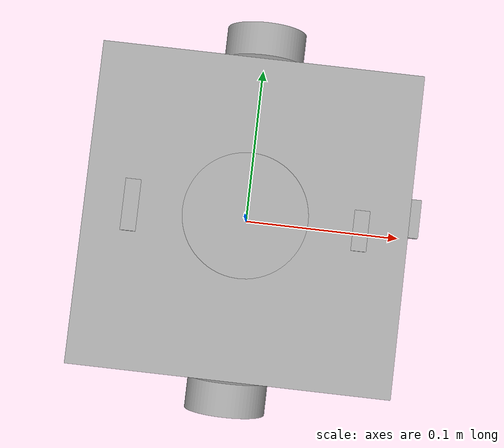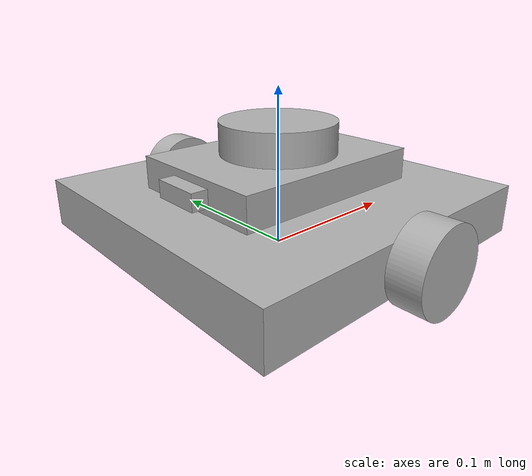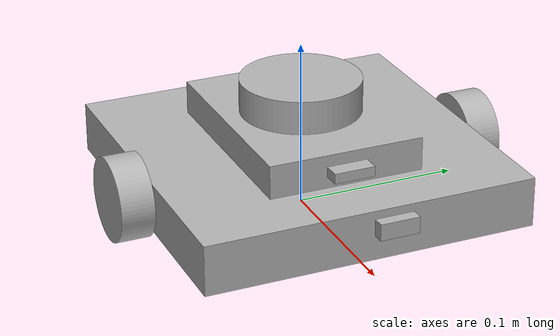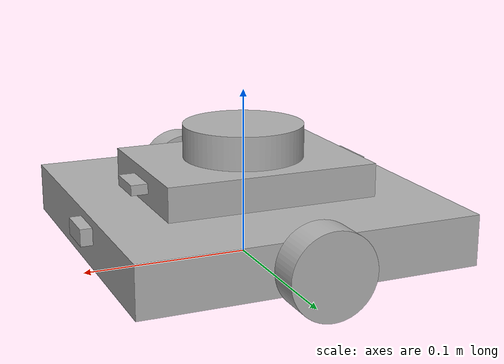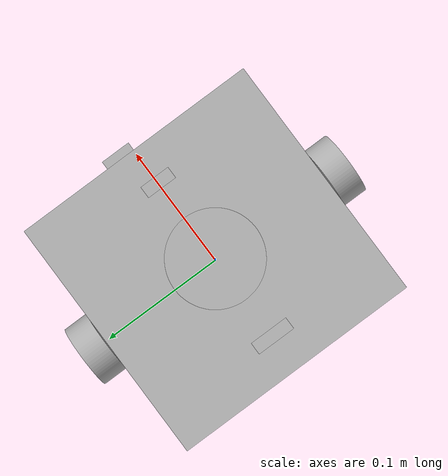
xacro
<?xml version="1.0" ?>
<robot name="bannu" xmlns:xacro="http://www.ros.org/wiki/xacro">

<xacro:include filename="$(find bannu_description)/urdf/materials.xacro" />
<xacro:include filename="$(find bannu_description)/urdf/bannu.trans" />
<xacro:include filename="$(find bannu_description)/urdf/bannu.gazebo" />
<link name="base_link">
  <inertial>
    <origin xyz="-1.4326115948005535e-05 -1.2600134811548118e-17 0.029087654253321497" rpy="0 0 0"/>
    <mass value="1.53024455420228"/>
    <inertia ixx="0.004664" iyy="0.004851" izz="0.009038" ixy="0.0" iyz="-0.0" ixz="-1e-06"/>
  </inertial>
  <visual>
    <origin xyz="0 0 0" rpy="0 0 0"/>
    <geometry>
      <mesh filename="file://$(find bannu_description)/meshes/base_link.stl" scale="0.001 0.001 0.001"/>
    </geometry>
    <material name="silver"/>
  </visual>
  <collision>
    <origin xyz="0 0 0" rpy="0 0 0"/>
    <geometry>
      <mesh filename="file://$(find bannu_description)/meshes/base_link.stl" scale="0.001 0.001 0.001"/>
    </geometry>
  </collision>
</link>

<link name="wheel_2_1">
  <inertial>
    <origin xyz="-3.618764437576268e-18 -0.009999999999999995 -6.938893903907228e-18" rpy="0 0 0"/>
    <mass value="0.03652101459798134"/>
    <inertia ixx="7e-06" iyy="1.1e-05" izz="7e-06" ixy="0.0" iyz="0.0" ixz="-0.0"/>
  </inertial>
  <visual>
    <origin xyz="-0.0 0.1 -0.025" rpy="0 0 0"/>
    <geometry>
      <mesh filename="file://$(find bannu_description)/meshes/wheel_2_1.stl" scale="0.001 0.001 0.001"/>
    </geometry>
    <material name="silver"/>
  </visual>
  <collision>
    <origin xyz="-0.0 0.1 -0.025" rpy="0 0 0"/>
    <geometry>
      <mesh filename="file://$(find bannu_description)/meshes/wheel_2_1.stl" scale="0.001 0.001 0.001"/>
    </geometry>
  </collision>
</link>

<link name="wheel_1_1">
  <inertial>
    <origin xyz="-5.839210486826581e-18 0.009999999999999995 3.469446951953614e-18" rpy="0 0 0"/>
    <mass value="0.03652101459798134"/>
    <inertia ixx="7e-06" iyy="1.1e-05" izz="7e-06" ixy="-0.0" iyz="0.0" ixz="-0.0"/>
  </inertial>
  <visual>
    <origin xyz="-0.0 -0.1 -0.025" rpy="0 0 0"/>
    <geometry>
      <mesh filename="file://$(find bannu_description)/meshes/wheel_1_1.stl" scale="0.001 0.001 0.001"/>
    </geometry>
    <material name="silver"/>
  </visual>
  <collision>
    <origin xyz="-0.0 -0.1 -0.025" rpy="0 0 0"/>
    <geometry>
      <mesh filename="file://$(find bannu_description)/meshes/wheel_1_1.stl" scale="0.001 0.001 0.001"/>
    </geometry>
  </collision>
</link>

<link name="lidar_1">
  <inertial>
    <origin xyz="0.0 0.0 0.010000000000000009" rpy="0 0 0"/>
    <mass value="0.08658229353293467"/>
    <inertia ixx="3.1e-05" iyy="3.1e-05" izz="5.6e-05" ixy="0.0" iyz="-0.0" ixz="0.0"/>
  </inertial>
  <visual>
    <origin xyz="-0.0 -0.0 -0.06" rpy="0 0 0"/>
    <geometry>
      <mesh filename="file://$(find bannu_description)/meshes/lidar_1.stl" scale="0.001 0.001 0.001"/>
    </geometry>
    <material name="silver"/>
  </visual>
  <collision>
    <origin xyz="-0.0 -0.0 -0.06" rpy="0 0 0"/>
    <geometry>
      <mesh filename="file://$(find bannu_description)/meshes/lidar_1.stl" scale="0.001 0.001 0.001"/>
    </geometry>
  </collision>
</link>

<link name="gps_1">
  <inertial>
    <origin xyz="0.004999564465025266 0.0 6.938893903907228e-18" rpy="0 0 0"/>
    <mass value="0.0015796316677450844"/>
    <inertia ixx="0.0" iyy="0.0" izz="0.0" ixy="-0.0" iyz="0.0" ixz="-0.0"/>
  </inertial>
  <visual>
    <origin xyz="-0.063857 -0.0 -0.05" rpy="0 0 0"/>
    <geometry>
      <mesh filename="file://$(find bannu_description)/meshes/gps_1.stl" scale="0.001 0.001 0.001"/>
    </geometry>
    <material name="silver"/>
  </visual>
  <collision>
    <origin xyz="-0.063857 -0.0 -0.05" rpy="0 0 0"/>
    <geometry>
      <mesh filename="file://$(find bannu_description)/meshes/gps_1.stl" scale="0.001 0.001 0.001"/>
    </geometry>
  </collision>
</link>

<link name="sensor_2_1">
  <inertial>
    <origin xyz="0.0 0.011953949421835936 0.0049999999999999975" rpy="0 0 0"/>
    <mass value="0.003582943115950085"/>
    <inertia ixx="0.0" iyy="0.0" izz="0.0" ixy="0.0" iyz="0.0" ixz="0.0"/>
  </inertial>
  <visual>
    <origin xyz="-0.1 -0.0 -0.025" rpy="0 0 0"/>
    <geometry>
      <mesh filename="file://$(find bannu_description)/meshes/sensor_2_1.stl" scale="0.001 0.001 0.001"/>
    </geometry>
    <material name="silver"/>
  </visual>
  <collision>
    <origin xyz="-0.1 -0.0 -0.025" rpy="0 0 0"/>
    <geometry>
      <mesh filename="file://$(find bannu_description)/meshes/sensor_2_1.stl" scale="0.001 0.001 0.001"/>
    </geometry>
  </collision>
</link>

<link name="camera_1">
  <inertial>
    <origin xyz="-0.004999564465025266 0.0 0.0" rpy="0 0 0"/>
    <mass value="0.003465633747055477"/>
    <inertia ixx="0.0" iyy="0.0" izz="0.0" ixy="-0.0" iyz="0.0" ixz="0.0"/>
  </inertial>
  <visual>
    <origin xyz="0.063857 -0.0 -0.05" rpy="0 0 0"/>
    <geometry>
      <mesh filename="file://$(find bannu_description)/meshes/camera_1.stl" scale="0.001 0.001 0.001"/>
    </geometry>
    <material name="silver"/>
  </visual>
  <collision>
    <origin xyz="0.063857 -0.0 -0.05" rpy="0 0 0"/>
    <geometry>
      <mesh filename="file://$(find bannu_description)/meshes/camera_1.stl" scale="0.001 0.001 0.001"/>
    </geometry>
  </collision>
</link>

<joint name="Revolute 2" type="continuous">
  <origin xyz="0.0 -0.1 0.025" rpy="0 0 0"/>
  <parent link="base_link"/>
  <child link="wheel_2_1"/>
  <axis xyz="0.0 -1.0 0.0"/>
</joint>

<joint name="Revolute 3" type="continuous">
  <origin xyz="0.0 0.1 0.025" rpy="0 0 0"/>
  <parent link="base_link"/>
  <child link="wheel_1_1"/>
  <axis xyz="0.0 1.0 0.0"/>
</joint>

<joint name="Rigid 4" type="fixed">
  <origin xyz="0.0 0.0 0.06" rpy="0 0 0"/>
  <parent link="base_link"/>
  <child link="lidar_1"/>
</joint>

<joint name="Rigid 5" type="fixed">
  <origin xyz="0.063857 0.0 0.05" rpy="0 0 0"/>
  <parent link="base_link"/>
  <child link="gps_1"/>
</joint>

<joint name="Rigid 6" type="fixed">
  <origin xyz="0.1 0.0 0.025" rpy="0 0 0"/>
  <parent link="base_link"/>
  <child link="sensor_2_1"/>
</joint>

<joint name="Rigid 7" type="fixed">
  <origin xyz="-0.063857 0.0 0.05" rpy="0 0 0"/>
  <parent link="base_link"/>
  <child link="camera_1"/>
</joint>

</robot>

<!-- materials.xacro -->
<robot name="bannu" xmlns:xacro="http://www.ros.org/wiki/xacro" >

<material name="silver">
  <color rgba="0.700 0.700 0.700 1.000"/>
</material>

</robot>

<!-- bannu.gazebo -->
<robot name="bannu" xmlns:xacro="http://www.ros.org/wiki/xacro" >

<xacro:property name="body_color" value="Gazebo/Silver" />

<gazebo>
  <plugin name="control" filename="libgazebo_ros_control.so"/>
</gazebo>
<gazebo reference="base_link">
  <material>${body_color}</material>
  <mu1>0.2</mu1>
  <mu2>0.2</mu2>
  <self_collide>true</self_collide>
  <gravity>true</gravity>
</gazebo>

<gazebo reference="wheel_2_1">
  <material>${body_color}</material>
  <mu1>0.2</mu1>
  <mu2>0.2</mu2>
  <self_collide>true</self_collide>
</gazebo>

<gazebo reference="wheel_1_1">
  <material>${body_color}</material>
  <mu1>0.2</mu1>
  <mu2>0.2</mu2>
  <self_collide>true</self_collide>
</gazebo>

<gazebo reference="lidar_1">
  <material>${body_color}</material>
  <mu1>0.2</mu1>
  <mu2>0.2</mu2>
  <self_collide>true</self_collide>
</gazebo>

<gazebo reference="gps_1">
  <material>${body_color}</material>
  <mu1>0.2</mu1>
  <mu2>0.2</mu2>
  <self_collide>true</self_collide>
</gazebo>

<gazebo reference="sensor_2_1">
  <material>${body_color}</material>
  <mu1>0.2</mu1>
  <mu2>0.2</mu2>
  <self_collide>true</self_collide>
</gazebo>

<gazebo reference="camera_1">
  <material>${body_color}</material>
  <mu1>0.2</mu1>
  <mu2>0.2</mu2>
  <self_collide>true</self_collide>
</gazebo>

</robot>
